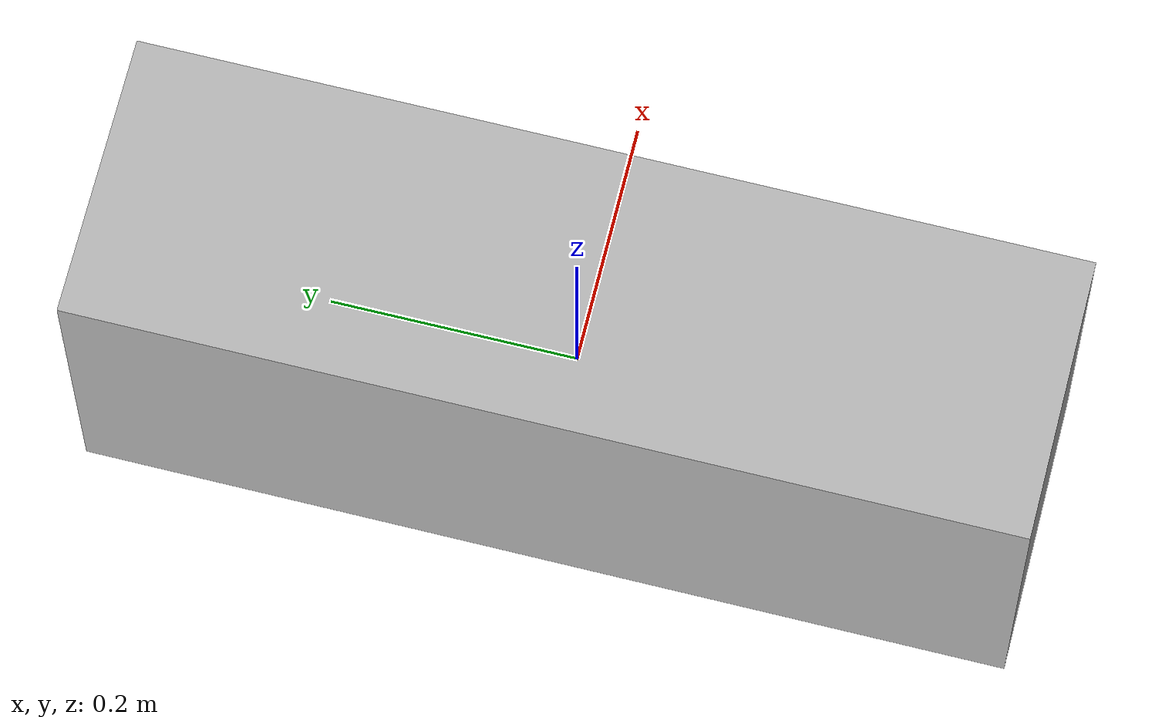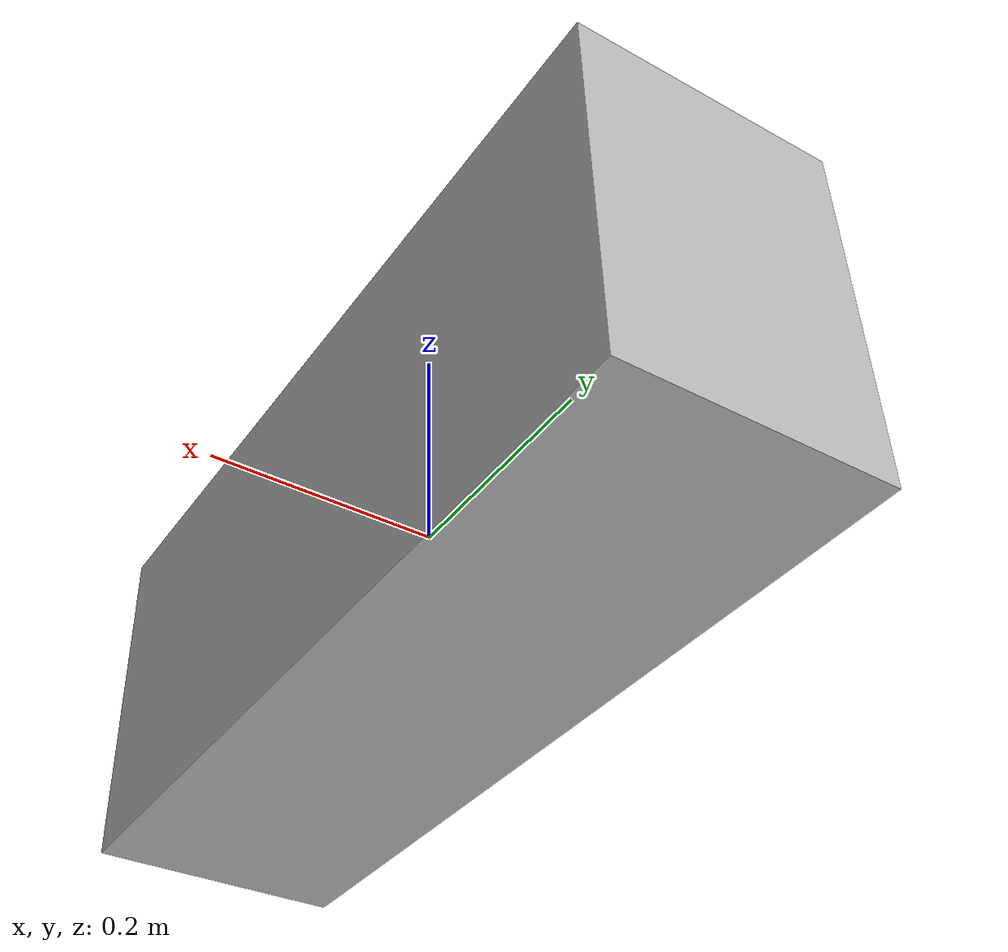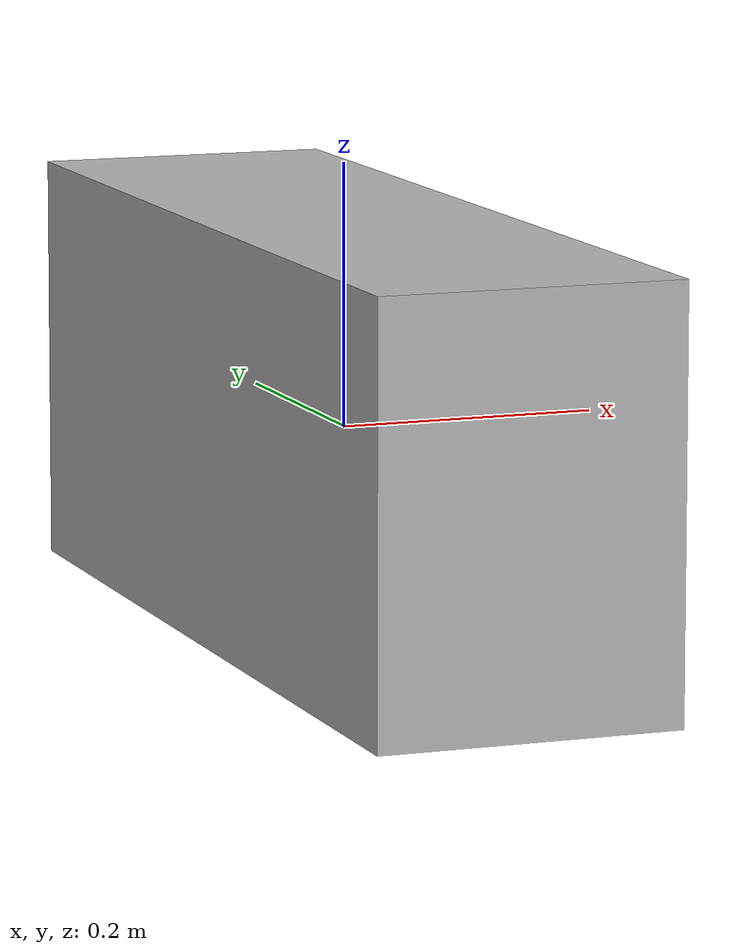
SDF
<?xml version="1.0" ?>
<sdf version="1.5">
  <model name="data_rig">
    <pose>0 0 0 0 0 0</pose>
    <link name="data_rig_link">
      <gravity>0</gravity>
      <inertial>
        <mass>1</mass>
      </inertial>
      <collision name="collision">
        <geometry>
          <box>
            <size>0.023000 0.076000 0.032000</size>
          </box>
        </geometry>
      </collision>
      <visual name="visual">
        <geometry>
          <box>
            <size>0.23000 0.76000 0.32000</size>
          </box>
        </geometry>
      </visual>

      <!-- Stereo Camera -->
      <sensor type="multicamera" name="stereo_camera">
        <update_rate>30.0</update_rate>
        <camera name="left">
          <horizontal_fov>1.570796</horizontal_fov>
          <image>
            <width>640</width>
            <height>480</height>
            <format>R8G8B8</format>
          </image>
          <clip>
            <near>0.02</near>
            <far>300</far>
          </clip>
          <noise>
            <type>gaussian</type>
            <mean>0.0</mean>
            <stddev>0.007</stddev>
          </noise>
        </camera>
        <camera name="right">
          <pose>0 -0.2 0 0 0 0</pose>
          <horizontal_fov>1.570796</horizontal_fov>
          <image>
            <width>640</width>
            <height>480</height>
            <format>R8G8B8</format>
          </image>
          <clip>
            <near>0.02</near>
            <far>300</far>
          </clip>
          <noise>
            <type>gaussian</type>
            <mean>0.0</mean>
            <stddev>0.007</stddev>
          </noise>
        </camera>
        <plugin name="stereo_camera_controller" filename="libgazebo_ros_multicamera.so">
          <alwaysOn>true</alwaysOn>
          <updateRate>0.0</updateRate>
          <cameraName>stereo_camera</cameraName>
          <imageTopicName>image_raw</imageTopicName>
          <cameraInfoTopicName>camera_info</cameraInfoTopicName>
          <frameName>left_camera_optical_frame</frameName>
          <hackBaseline>0.2</hackBaseline>
          <distortionK1>0.0</distortionK1>
          <distortionK2>0.0</distortionK2>
          <distortionK3>0.0</distortionK3>
          <distortionT1>0.0</distortionT1>
          <distortionT2>0.0</distortionT2>
        </plugin>
      </sensor>

      <!-- IMU -->
      <sensor name="imu_sensor" type="imu">
        <always_on>true</always_on>
        <update_rate>200</update_rate>
        <visualize>true</visualize>
        <imu>
            <angular_velocity>
                <x>
                    <noise type="gaussian">
                        <mean>0.0</mean>
                        <stddev>2e-4</stddev>
                        <bias_mean>0.0</bias_mean>
                        <bias_stddev>0.0000008</bias_stddev>
                    </noise>
                </x>
                <y>
                    <noise type="gaussian">
                        <mean>0.0</mean>
                        <stddev>2e-4</stddev>
                        <bias_mean>0.0</bias_mean>
                        <bias_stddev>0.0000008</bias_stddev>
                    </noise>
                </y>
                <z>
                    <noise type="gaussian">
                        <mean>0.0</mean>
                        <stddev>2e-4</stddev>
                        <bias_mean>0.0</bias_mean>
                        <bias_stddev>0.0000008</bias_stddev>
                    </noise>
                </z>
            </angular_velocity>
            <linear_acceleration>
                <x>
                    <noise type="gaussian">
                        <mean>0.0</mean>
                        <stddev>1.7e-2</stddev>
                        <bias_mean>0.0</bias_mean>
                        <bias_stddev>0.001</bias_stddev>
                    </noise>
                </x>
                <y>
                    <noise type="gaussian">
                        <mean>0.0</mean>
                        <stddev>1.7e-2</stddev>
                        <bias_mean>0.0</bias_mean>
                        <bias_stddev>0.001</bias_stddev>
                    </noise>
                </y>
                <z>
                    <noise type="gaussian">
                        <mean>0.0</mean>
                        <stddev>1.7e-2</stddev>
                        <bias_mean>0.0</bias_mean>
                        <bias_stddev>0.001</bias_stddev>
                    </noise>
                </z>
            </linear_acceleration>
        </imu>
        <topic>imu</topic>
        <plugin filename="libgazebo_ros_imu_sensor.so" name="imu_plugin">
          <robotNamespace>/</robotNamespace>
          <gaussianNoise>0.0</gaussianNoise>
          <xyzOffset>0 0 0</xyzOffset>
          <rpyOffset>0 0 0</rpyOffset>
          <topicName>imu</topicName>
          <bodyName>imu_link</bodyName>
          <updateRateHZ>200</updateRateHZ>
          <frameName>imu_link</frameName>
          <initialOrientationAsReference>false</initialOrientationAsReference>
        </plugin>
        <pose>0 0 0 0 0 0</pose>
      </sensor>
    </link>
  </model>
</sdf>
